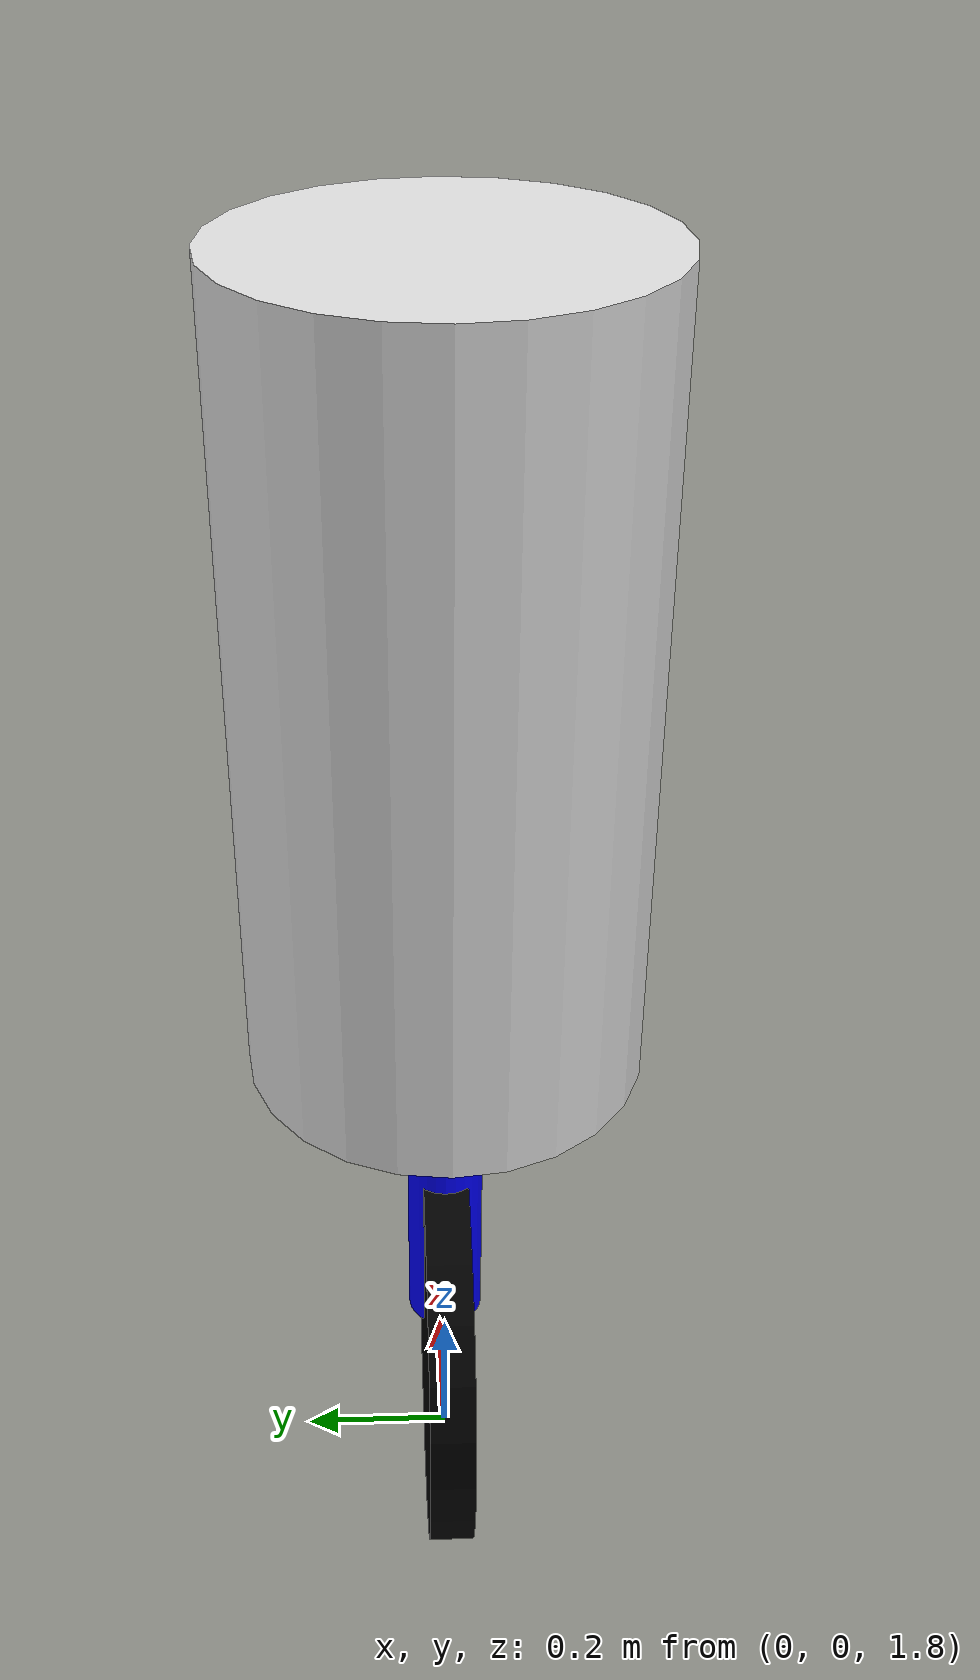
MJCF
<?xml version="1.0" ?>

<mujoco model="euc">
  <!-- XACRO PARAMETERS -->
  <!-- rando stuff -->
  <!-- Body parameters -->
  <!--INERTIA PROB TOO HIGH, maybe make this a pointish mass-->
  <!-- but is it tho -->
  <!-- update -->
  <!-- but is it tho -->
  <!--GTT: Grand Theft Toe-->
  <!-- XACRO MACROS -->
  <compiler angle="radian" autolimits="true"/>
  <option gravity="0 0 -9.81" timestep="0.001">
    <!-- https://github.com/deepmind/mujoco/issues/941 -->
  </option>
  <default>
    <geom conaffinity="0" contype="4"/>
  </default>
  <asset>
    <texture builtin="gradient" height="512" rgb1="0.3 0.5 0.7" rgb2="0 0 0" type="skybox" width="512"/>
    <texture builtin="checker" height="512" mark="cross" markrgb=".8 .8 .8" name="texplane" rgb1=".2 .3 .4" rgb2=".1 0.15 0.2" type="2d" width="512"/>
    <texture builtin="flat" height="1278" mark="cross" markrgb="1 1 1" name="texgeom" random="0.01" rgb1="0.8 0.6 0.4" rgb2="0.8 0.6 0.4" type="cube" width="127"/>
    <material name="matplane" reflectance="0.3" texrepeat="1 1" texture="texplane" texuniform="true"/>
    <material name="matgeom" rgba="0.8 0.6 .4 1" texture="texgeom" texuniform="true"/>
  </asset>
  <worldbody>
    <geom conaffinity="4" contype="2" material="matplane" name="floor" pos="0 0 0" size="0 0 .25" type="plane"/>
    <light cutoff="100" diffuse="1 1 1" dir="-0 0 -1.3" directional="true" exponent="1" pos="0 0 1.3" specular=".1 .1 .1"/>

    <body name="human" pos="0 0 3">
      <joint name="FLOATING" type="free" />
      <geom mass="45" name="body" pos="0 0 0" rgba="0.88 0.88 0.88 1.0" size="0.25 0.5" type="cylinder"/>
      <!-- front_back_sign:=1 left_right_sign:=1" -->
      <body name="intermediate" pos="0 0 -0.5">
        <joint axis="0 0 1" damping="0.02" name="TWIST" pos="0 0 -0.5" range="-0.1 0.1"/>
        <geom mass="1" name="intermediate" pos="0 0 0" rgba="0 1.0 0 1" size="0.04 0.05" type="cylinder"/>
        <body name="ankle">
          <joint type="slide" axis="0 0 1" name="HOP" pos="0 0 -0.2" range="-0.1 0.1"/>
          <geom mass="25" name="ankle" pos="0 0 -0.2" quat="1 0 0 0" rgba="0 0 1.0 1" size="0.05 0.25" type="cylinder"/>
          <body name="wheel" pos="0 0 -0.5">
            <joint axis="0 1 0" damping="0.02" name="WHEEL" pos="0 0 0"/>
            <geom mass="5" name="wheel" pos="0 0 0" quat="0.707107 0.707107 0 0" rgba="0 0 0 1" size="0.3 0.03" type="cylinder"/>
          </body>
        </body>
      <site name="IMU" quat="1 0 0 0"/>
      </body>
      <!-- quat cuz reorienting IMU to match (i think) real life moteus pi3hat imu orientation-->
    </body>
  </worldbody>
  <actuator>
    <general joint="TWIST" name="TWIST_act" forcelimited="true" forcerange="-500 500" ctrlrange="-1 1" gainprm="1000 0 0"/>
    <general joint="HOP" name="HOP_act" forcelimited="true" forcerange="-2000 2000" ctrlrange="-1 1" gainprm="1000 0 0"/>
    <general joint="WHEEL" name="WHEEL_act" forcelimited="true" forcerange="-500 500" ctrlrange="-1 1" gainprm="1000 0 0"/>
  </actuator>
  <sensor>
    <accelerometer name="ACCEL" site="IMU"/>
    <gyro name="GYRO" site="IMU"/>
    <framequat name="QUAT" objname="IMU" objtype="site"/>
  </sensor>
</mujoco>
